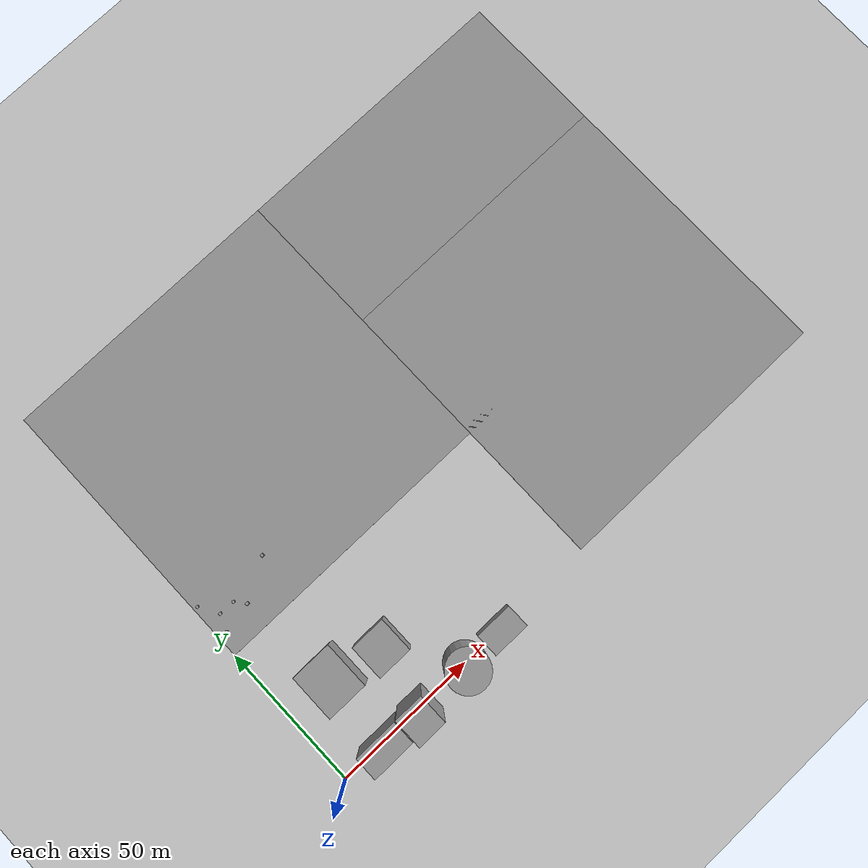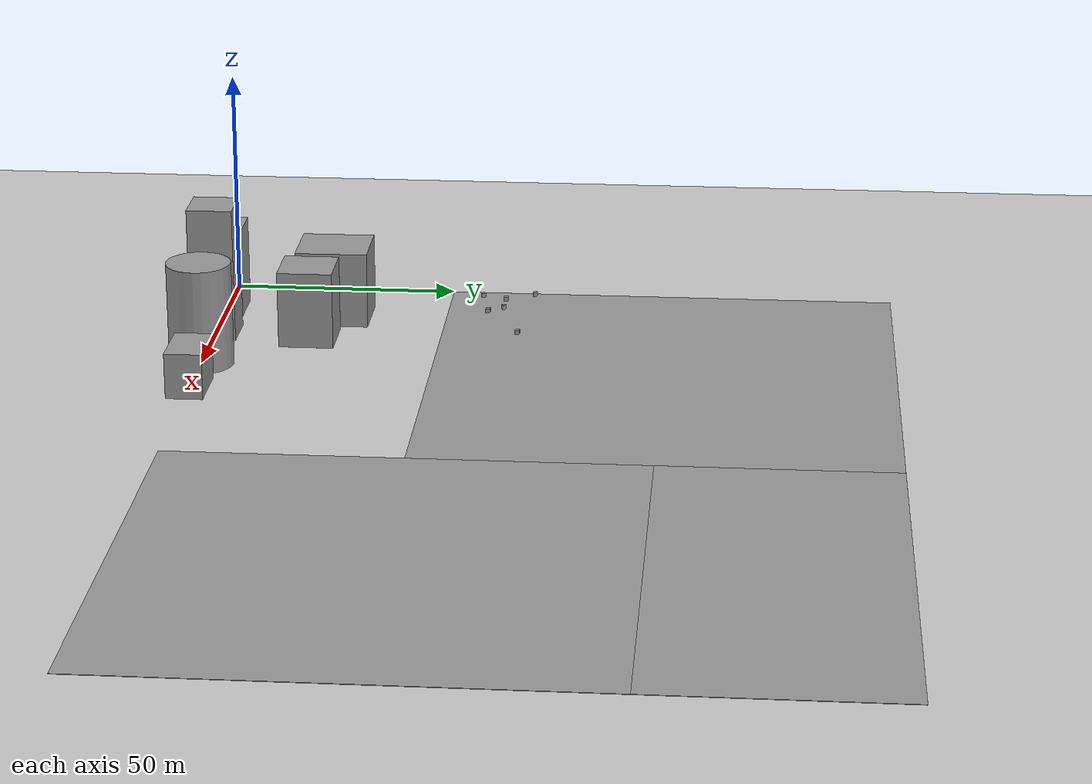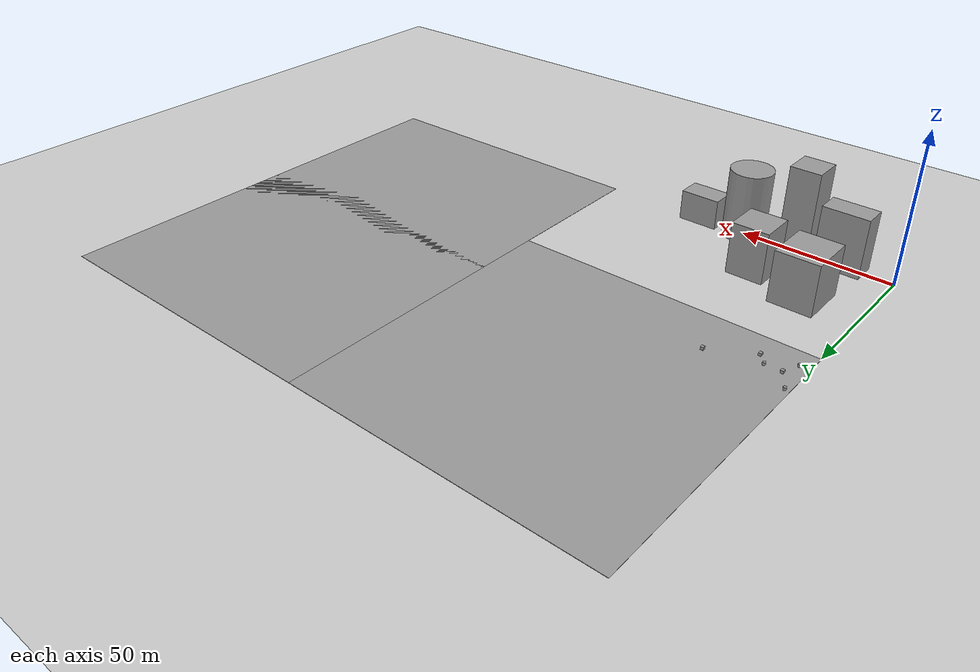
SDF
<sdf version="1.4">
 <world name="default">
  <light name="sun" type="directional">
   <pose>0 0 10 0 -0 0</pose>
   <diffuse>0.8 0.8 0.8 1</diffuse>
   <specular>0.2 0.2 0.2 1</specular>
   <attenuation>
    <range>1000</range>
    <constant>0.9</constant>
    <linear>0.01</linear>
    <quadratic>0.001</quadratic>
   </attenuation>
   <direction>-0.5 0.1 -0.9</direction>
  </light>
  <model name="ground_plane">
   <pose>50 50 0 0 -0 0</pose>
   <static>1</static>
   <link name="link">
    <collision name="collision">
     <geometry><plane><normal>0 0 1</normal><size>100 100</size></plane></geometry>
     <surface><friction><ode><mu>100</mu><mu2>50</mu2></ode></friction></surface>
    </collision>
    <visual name="visual">
     <cast_shadows>0</cast_shadows>
     <geometry><plane><normal>0 0 1</normal><size>100 100</size></plane></geometry>
     <material>
      <script><uri>file://media/materials/scripts/gazebo.material</uri><name>Gazebo/Grey</name></script>
     </material>
    </visual>
    <velocity_decay><linear>0</linear><angular>0</angular></velocity_decay>
   </link>
  </model>
  <physics type="ode">
   <max_step_size>0.001</max_step_size>
   <real_time_factor>1</real_time_factor>
   <real_time_update_rate>1000</real_time_update_rate>
   <gravity>0 0 -9.8</gravity>
  </physics>
  <scene><ambient>0.4 0.4 0.4 1</ambient><background>0.7 0.7 0.7 1</background><shadows>1</shadows></scene>
  <spherical_coordinates>
   <surface_model>EARTH_WGS84</surface_model>
   <latitude_deg>0</latitude_deg>
   <longitude_deg>0</longitude_deg>
   <elevation>0</elevation>
   <heading_deg>0</heading_deg>
  </spherical_coordinates>
  <model name="unit_box_1">
   <pose>31 0 15 0 -0 0</pose>
   <link name="link">
    <inertial>
     <mass>1</mass>
     <inertia><ixx>1</ixx><ixy>0</ixy><ixz>0</ixz><iyy>1</iyy><iyz>0</iyz><izz>1</izz></inertia>
    </inertial>
    <collision name="collision"><geometry><box><size>10 10 30</size></box></geometry></collision>
    <visual name="visual">
     <geometry><box><size>10 10 30</size></box></geometry>
     <material>
      <script><uri>file://media/materials/scripts/gazebo.material</uri><name>Gazebo/Grey</name></script>
     </material>
    </visual>
    <velocity_decay><linear>0</linear><angular>0</angular></velocity_decay>
   </link>
   <static>1</static>
  </model>
  <model name="unit_box_1_0">
   <pose>17 0 10 0 -0 0</pose>
   <link name="link">
    <inertial>
     <mass>1</mass>
     <inertia><ixx>1</ixx><ixy>0</ixy><ixz>0</ixz><iyy>1</iyy><iyz>0</iyz><izz>1</izz></inertia>
    </inertial>
    <collision name="collision"><geometry><box><size>15 8 20</size></box></geometry></collision>
    <visual name="visual">
     <geometry><box><size>15 8 20</size></box></geometry>
     <material>
      <script><uri>file://media/materials/scripts/gazebo.material</uri><name>Gazebo/Grey</name></script>
     </material>
    </visual>
    <velocity_decay><linear>0</linear><angular>0</angular></velocity_decay>
   </link>
   <static>1</static>
  </model>
  <model name="unit_box_2">
   <pose>35.6 21.5 9.5 0 -0 0</pose>
   <link name="link">
    <inertial>
     <mass>1</mass>
     <inertia><ixx>1</ixx><ixy>0</ixy><ixz>0</ixz><iyy>1</iyy><iyz>0</iyz><izz>1</izz></inertia>
    </inertial>
    <collision name="collision"><geometry><box><size>12 12 17</size></box></geometry></collision>
    <visual name="visual">
     <geometry><box><size>12 12 17</size></box></geometry>
     <material>
      <script><uri>file://media/materials/scripts/gazebo.material</uri><name>Gazebo/Grey</name></script>
     </material>
    </visual>
    <velocity_decay><linear>0</linear><angular>0</angular></velocity_decay>
   </link>
   <static>1</static>
  </model>
  <model name="unit_box_3">
   <pose>65 0 5 0 -0 0</pose>
   <link name="link">
    <inertial>
     <mass>1</mass>
     <inertia><ixx>1</ixx><ixy>0</ixy><ixz>0</ixz><iyy>1</iyy><iyz>0</iyz><izz>1</izz></inertia>
    </inertial>
    <collision name="collision"><geometry><box><size>13 8 10</size></box></geometry></collision>
    <visual name="visual">
     <geometry><box><size>13 8 10</size></box></geometry>
     <material>
      <script><uri>file://media/materials/scripts/gazebo.material</uri><name>Gazebo/Grey</name></script>
     </material>
    </visual>
    <velocity_decay><linear>0</linear><angular>0</angular></velocity_decay>
   </link>
   <static>1</static>
  </model>
  <model name="unit_box_4">
   <pose>5.27154 62.4411 0.5 0 -0 0</pose>
   <link name="link">
    <inertial>
     <mass>1</mass>
     <inertia><ixx>1</ixx><ixy>0</ixy><ixz>0</ixz><iyy>1</iyy><iyz>0</iyz><izz>1</izz></inertia>
    </inertial>
    <collision name="collision"><geometry><box><size>1 1 1</size></box></geometry></collision>
    <visual name="visual">
     <geometry><box><size>1 1 1</size></box></geometry>
     <material>
      <script><uri>file://media/materials/scripts/gazebo.material</uri><name>Gazebo/Grey</name></script>
     </material>
    </visual>
    <velocity_decay><linear>0</linear><angular>0</angular></velocity_decay>
   </link>
   <static>1</static>
  </model>
  <model name="unit_box_5">
   <pose>13.3819 59.0036 0.5 0 -0 0</pose>
   <link name="link">
    <inertial>
     <mass>1</mass>
     <inertia><ixx>1</ixx><ixy>0</ixy><ixz>0</ixz><iyy>1</iyy><iyz>0</iyz><izz>1</izz></inertia>
    </inertial>
    <collision name="collision"><geometry><box><size>1 1 1</size></box></geometry></collision>
    <visual name="visual">
     <geometry><box><size>1 1 1</size></box></geometry>
     <material>
      <script><uri>file://media/materials/scripts/gazebo.material</uri><name>Gazebo/Grey</name></script>
     </material>
    </visual>
    <velocity_decay><linear>0</linear><angular>0</angular></velocity_decay>
   </link>
   <static>1</static>
  </model>
  <model name="unit_box_6">
   <pose>18 25 8.5 0 -0 0</pose>
   <link name="link">
    <inertial>
     <mass>1</mass>
     <inertia><ixx>1</ixx><ixy>0</ixy><ixz>0</ixz><iyy>1</iyy><iyz>0</iyz><izz>1</izz></inertia>
    </inertial>
    <collision name="collision"><geometry><box><size>14 16 17</size></box></geometry></collision>
    <visual name="visual">
     <geometry><box><size>14 16 17</size></box></geometry>
     <material>
      <script><uri>file://media/materials/scripts/gazebo.material</uri><name>Gazebo/Grey</name></script>
     </material>
    </visual>
    <velocity_decay><linear>0</linear><angular>0</angular></velocity_decay>
   </link>
   <static>1</static>
  </model>
  <model name="unit_box_7">
   <pose>26.5967 66.7438 0.5 0 -0 0</pose>
   <link name="link">
    <inertial>
     <mass>1</mass>
     <inertia><ixx>1</ixx><ixy>0</ixy><ixz>0</ixz><iyy>1</iyy><iyz>0</iyz><izz>1</izz></inertia>
    </inertial>
    <collision name="collision"><geometry><box><size>1 1 1</size></box></geometry></collision>
    <visual name="visual">
     <geometry><box><size>1 1 1</size></box></geometry>
     <material>
      <script><uri>file://media/materials/scripts/gazebo.material</uri><name>Gazebo/Grey</name></script>
     </material>
    </visual>
    <velocity_decay><linear>0</linear><angular>0</angular></velocity_decay>
   </link>
   <static>1</static>
  </model>
  <model name="unit_cylinder_1">
   <pose>50 0 11.5 0 -0 0</pose>
   <link name="link">
    <inertial>
     <mass>1</mass>
     <inertia><ixx>1</ixx><ixy>0</ixy><ixz>0</ixz><iyy>1</iyy><iyz>0</iyz><izz>1</izz></inertia>
    </inertial>
    <collision name="collision">
     <geometry><cylinder><radius>7</radius><length>23</length></cylinder></geometry>
    </collision>
    <visual name="visual">
     <geometry><cylinder><radius>7</radius><length>23</length></cylinder></geometry>
     <material>
      <script><uri>file://media/materials/scripts/gazebo.material</uri><name>Gazebo/Grey</name></script>
     </material>
    </visual>
    <velocity_decay><linear>0</linear><angular>0</angular></velocity_decay>
   </link>
   <static>1</static>
  </model>
  <model name="unit_cylinder_2">
   <pose>1.53357 68.8367 0.499992 -1e-06 0 0</pose>
   <link name="link">
    <inertial>
     <mass>1</mass>
     <inertia><ixx>1</ixx><ixy>0</ixy><ixz>0</ixz><iyy>1</iyy><iyz>0</iyz><izz>1</izz></inertia>
    </inertial>
    <collision name="collision">
     <geometry><cylinder><radius>0.5</radius><length>1</length></cylinder></geometry>
    </collision>
    <visual name="visual">
     <geometry><cylinder><radius>0.5</radius><length>1</length></cylinder></geometry>
     <material>
      <script><uri>file://media/materials/scripts/gazebo.material</uri><name>Gazebo/Grey</name></script>
     </material>
    </visual>
    <velocity_decay><linear>0</linear><angular>0</angular></velocity_decay>
   </link>
   <static>1</static>
  </model>
  <model name="unit_cylinder_3">
   <pose>10.6856 62.3515 0.499998 1e-06 -0 0</pose>
   <link name="link">
    <inertial>
     <mass>1</mass>
     <inertia><ixx>1</ixx><ixy>0</ixy><ixz>0</ixz><iyy>1</iyy><iyz>0</iyz><izz>1</izz></inertia>
    </inertial>
    <collision name="collision">
     <geometry><cylinder><radius>0.5</radius><length>1</length></cylinder></geometry>
    </collision>
    <visual name="visual">
     <geometry><cylinder><radius>0.5</radius><length>1</length></cylinder></geometry>
     <material>
      <script><uri>file://media/materials/scripts/gazebo.material</uri><name>Gazebo/Grey</name></script>
     </material>
    </visual>
    <velocity_decay><linear>0</linear><angular>0</angular></velocity_decay>
   </link>
   <static>1</static>
  </model>
  <model name="unit_cylinder_4">
   <pose>3.08061 57.0367 0.499998 0 -0 0</pose>
   <link name="link">
    <inertial>
     <mass>1</mass>
     <inertia><ixx>1</ixx><ixy>0</ixy><ixz>0</ixz><iyy>1</iyy><iyz>0</iyz><izz>1</izz></inertia>
    </inertial>
    <collision name="collision">
     <geometry><cylinder><radius>0.5</radius><length>1</length></cylinder></geometry>
    </collision>
    <visual name="visual">
     <geometry><cylinder><radius>0.5</radius><length>1</length></cylinder></geometry>
     <material>
      <script><uri>file://media/materials/scripts/gazebo.material</uri><name>Gazebo/Grey</name></script>
     </material>
    </visual>
    <velocity_decay><linear>0</linear><angular>0</angular></velocity_decay>
   </link>
   <static>1</static>
  </model>
  <model name="ground_plane_0">
   <static>1</static>
   <link name="link">
    <collision name="collision">
     <geometry><plane><normal>0 0 1</normal><size>100 100</size></plane></geometry>
     <surface><friction><ode><mu>100</mu><mu2>50</mu2></ode></friction></surface>
    </collision>
    <visual name="visual">
     <cast_shadows>0</cast_shadows>
     <geometry><plane><normal>0 0 1</normal><size>100 100</size></plane></geometry>
     <material>
      <script><uri>file://media/materials/scripts/gazebo.material</uri><name>Gazebo/Grey</name></script>
     </material>
    </visual>
    <velocity_decay><linear>0</linear><angular>0</angular></velocity_decay>
   </link>
   <pose>50 100 0 0 -0 0</pose>
  </model>
  <model name="ground_plane_1">
   <static>1</static>
   <link name="link">
    <collision name="collision">
     <geometry><plane><normal>0 0 1</normal><size>100 100</size></plane></geometry>
     <surface><friction><ode><mu>100</mu><mu2>50</mu2></ode></friction></surface>
    </collision>
    <visual name="visual">
     <cast_shadows>0</cast_shadows>
     <geometry><plane><normal>0 0 1</normal><size>100 100</size></plane></geometry>
     <material>
      <script><uri>file://media/materials/scripts/gazebo.material</uri><name>Gazebo/Grey</name></script>
     </material>
    </visual>
    <velocity_decay><linear>0</linear><angular>0</angular></velocity_decay>
   </link>
   <pose>150 50 0 0 -0 0</pose>
  </model>
  <model name="ground_plane_2">
   <static>1</static>
   <link name="link">
    <collision name="collision">
     <geometry><plane><normal>0 0 1</normal><size>100 100</size></plane></geometry>
     <surface><friction><ode><mu>100</mu><mu2>50</mu2></ode></friction></surface>
    </collision>
    <visual name="visual">
     <cast_shadows>0</cast_shadows>
     <geometry><plane><normal>0 0 1</normal><size>100 100</size></plane></geometry>
     <material>
      <script><uri>file://media/materials/scripts/gazebo.material</uri><name>Gazebo/Grey</name></script>
     </material>
    </visual>
    <velocity_decay><linear>0</linear><angular>0</angular></velocity_decay>
   </link>
   <pose>150 100 0 0 -0 0</pose>
  </model>
 </world>
</sdf>
